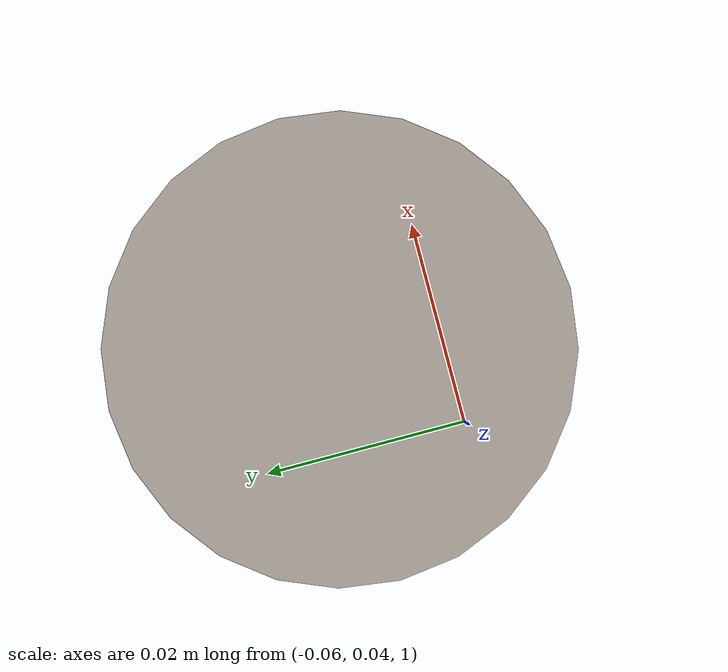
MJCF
<mujoco model="nail">
  <asset>
    <texture name="steel_texture" type="2d" file="./table_arena/textures/metal.png"/>
    <material name="steel_mat" texture="steel_texture" texrepeat="1 1" texuniform="true" specular="0.8" shininess="0.5" rgba="1 1 1 1"/>
    <material name="steel_head_mat" texture="steel_texture" texrepeat="1 1" texuniform="true" specular="0.6" shininess="0.4" rgba="1 1 1 1"/>
  </asset>

  <worldbody>
    <!-- Nail body with kinematic (mocap) positioning. -->
    <body name="nail" pos="-0.05 0.05 1.08" mocap="true">

      <geom name="nail_head" type="cylinder" pos="0 0 0.0036" quat="1 0 0 0"
            size="0.0182 0.0048" material="steel_head_mat" density="7850"
            friction="1.0 0.1 0.01" solref="0.005 1.0" solimp="0.95 0.99 0.001" condim="3"
            />

      <geom name="nail_shaft" type="cylinder" pos="0 0 -0.0363" quat="1 0 0 0"
            size="0.0073 0.0363" material="steel_mat" density="7850"
            friction="2.0 0.5 0.1" solref="0.005 1.0" solimp="0.95 0.99 0.001" condim="3"
            />

      <site name="nail_top_site" pos="0 0 0.0073" rgba="1 0 0 0" size="0.005"/>
      <site name="nail_bottom_site" pos="0 0 -0.0363" rgba="0 1 0 0" size="0.005"/>
      <site name="nail_center_site" pos="0 0 0" rgba="0 0 1 0" size="0.005"/>
    </body>
  </worldbody>

</mujoco>
